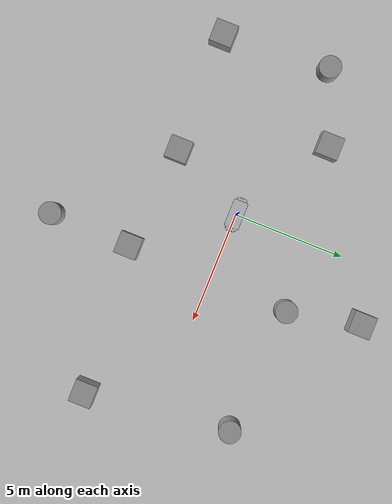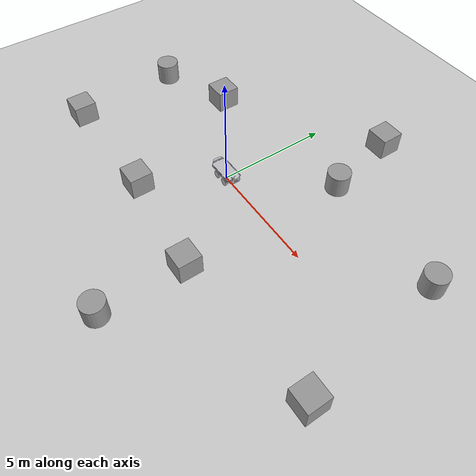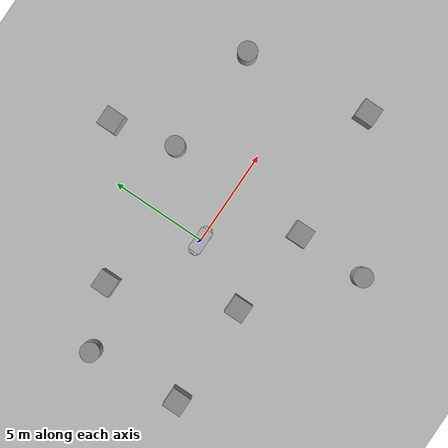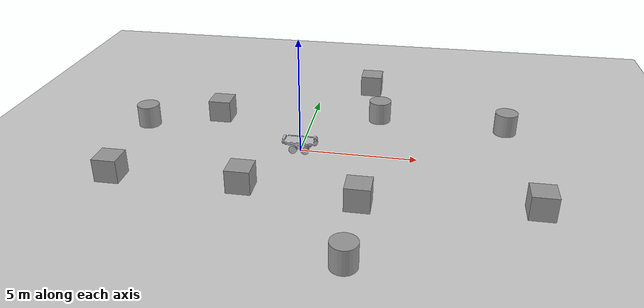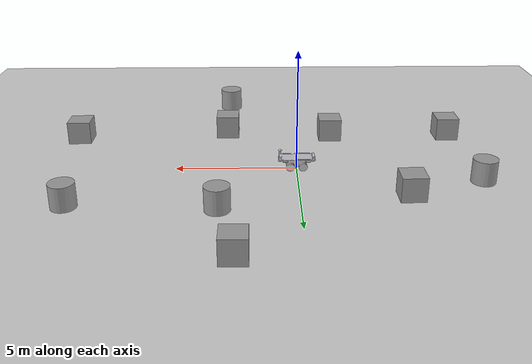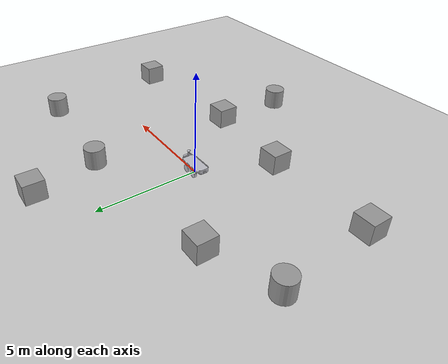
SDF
<sdf version="1.7">
 <world name="default">
  <light name="sun" type="directional">
   <pose>0 0 10 0 -0 0</pose>
   <diffuse>0.8 0.8 0.8 1</diffuse>
   <specular>0.2 0.2 0.2 1</specular>
   <attenuation>
    <range>1000</range>
    <constant>0.9</constant>
    <linear>0.01</linear>
    <quadratic>0.001</quadratic>
   </attenuation>
   <direction>-0.5 0.1 -0.9</direction>
   <spot><inner_angle>0</inner_angle><outer_angle>0</outer_angle><falloff>0</falloff></spot>
  </light>
  <model name="ground_plane">
   <static>1</static>
   <link name="link">
    <collision name="collision">
     <geometry><plane><normal>0 0 1</normal><size>100 100</size></plane></geometry>
     <surface><friction><ode><mu>100</mu><mu2>50</mu2></ode></friction></surface>
    </collision>
    <visual name="visual">
     <cast_shadows>0</cast_shadows>
     <geometry><plane><normal>0 0 1</normal><size>100 100</size></plane></geometry>
     <material>
      <script><uri>file://media/materials/scripts/gazebo.material</uri><name>Gazebo/Grey</name></script>
     </material>
    </visual>
   </link>
  </model>
  <gravity>0 0 -9.8</gravity>
  <magnetic_field>6e-06 2.3e-05 -4.2e-05</magnetic_field>
  <atmosphere type="adiabatic"/>
  <physics type="ode">
   <max_step_size>0.001</max_step_size>
   <real_time_factor>1</real_time_factor>
   <real_time_update_rate>1000</real_time_update_rate>
  </physics>
  <scene><ambient>0.4 0.4 0.4 1</ambient><background>0.7 0.7 0.7 1</background><shadows>1</shadows></scene>
  <audio><device>default</device></audio>
  <spherical_coordinates>
   <surface_model>EARTH_WGS84</surface_model>
   <latitude_deg>0</latitude_deg>
   <longitude_deg>0</longitude_deg>
   <elevation>0</elevation>
   <heading_deg>0</heading_deg>
  </spherical_coordinates>
  <model name="antobot_ant">
   <link name="base_footprint">
    <inertial>
     <pose>-0.007307 -7.8e-05 0.399288 0 -0 0</pose>
     <mass>1242.34</mass>
     <inertia>
      <ixx>46.383</ixx>
      <ixy>0.0666098</ixy>
      <ixz>-0.116876</ixz>
      <iyy>190.814</iyy>
      <iyz>0.023789</iyz>
      <izz>204.796</izz>
     </inertia>
    </inertial>
    <collision name="base_footprint_fixed_joint_lump__base_link_collision">
     <pose>0 0 0.2 0 -0 0</pose>
     <geometry>
      <mesh>
       <scale>0.001 0.001 0.001</scale>
       <uri>file:///home/the-hassan-shahzad/ros2_ws/install/antobot_ant_description/share/antobot_ant_description/meshes/base_link.stl</uri>
      </mesh>
     </geometry>
     <surface><friction><ode><mu>0.2</mu><mu2>0.2</mu2></ode></friction></surface>
    </collision>
    <collision name="base_footprint_fixed_joint_lump__front_camera_1_collision_1">
     <pose>0 0 0.2 0 -0 0</pose>
     <geometry>
      <mesh>
       <scale>0.001 0.001 0.001</scale>
       <uri>file:///home/the-hassan-shahzad/ros2_ws/install/antobot_ant_description/share/antobot_ant_description/meshes/front_camera_1.stl</uri>
      </mesh>
     </geometry>
     <surface><friction><ode><mu>0.2</mu><mu2>0.2</mu2></ode></friction></surface>
    </collision>
    <collision name="base_footprint_fixed_joint_lump__Leishen_C16_Bottom_Connector_1_collision_2">
     <pose>0 0 0.2 0 -0 0</pose>
     <geometry>
      <mesh>
       <scale>0.001 0.001 0.001</scale>
       <uri>file:///home/the-hassan-shahzad/ros2_ws/install/antobot_ant_description/share/antobot_ant_description/meshes/Leishen_C16_Bottom_Connector_1.stl</uri>
      </mesh>
     </geometry>
     <surface><friction><ode><mu>0.2</mu><mu2>0.2</mu2></ode></friction></surface>
    </collision>
    <collision name="base_footprint_fixed_joint_lump__rear_camera_1_collision_3">
     <pose>0 0 0.2 0 -0 0</pose>
     <geometry>
      <mesh>
       <scale>0.001 0.001 0.001</scale>
       <uri>file:///home/the-hassan-shahzad/ros2_ws/install/antobot_ant_description/share/antobot_ant_description/meshes/rear_camera_1.stl</uri>
      </mesh>
     </geometry>
     <surface><friction><ode><mu>0.2</mu><mu2>0.2</mu2></ode></friction></surface>
    </collision>
    <visual name="base_footprint_fixed_joint_lump__base_link_visual">
     <pose>0 0 0.2 0 -0 0</pose>
     <geometry>
      <mesh>
       <scale>0.001 0.001 0.001</scale>
       <uri>file:///home/the-hassan-shahzad/ros2_ws/install/antobot_ant_description/share/antobot_ant_description/meshes/base_link_R.stl</uri>
      </mesh>
     </geometry>
     <material>
      <script><name>Gazebo/Silver</name><uri>file://media/materials/scripts/gazebo.material</uri></script>
     </material>
    </visual>
    <visual name="base_footprint_fixed_joint_lump__front_camera_1_visual_1">
     <pose>0 0 0.2 0 -0 0</pose>
     <geometry>
      <mesh>
       <scale>0.001 0.001 0.001</scale>
       <uri>file:///home/the-hassan-shahzad/ros2_ws/install/antobot_ant_description/share/antobot_ant_description/meshes/front_camera_1.stl</uri>
      </mesh>
     </geometry>
     <material>
      <script><name>Gazebo/Silver</name><uri>file://media/materials/scripts/gazebo.material</uri></script>
     </material>
    </visual>
    <visual name="base_footprint_fixed_joint_lump__Leishen_C16_Bottom_Connector_1_visual_2">
     <pose>0 0 0.2 0 -0 0</pose>
     <geometry>
      <mesh>
       <scale>0.001 0.001 0.001</scale>
       <uri>file:///home/the-hassan-shahzad/ros2_ws/install/antobot_ant_description/share/antobot_ant_description/meshes/Leishen_C16_Bottom_Connector_1.stl</uri>
      </mesh>
     </geometry>
     <material>
      <script><name>Gazebo/Silver</name><uri>file://media/materials/scripts/gazebo.material</uri></script>
     </material>
    </visual>
    <visual name="base_footprint_fixed_joint_lump__rear_camera_1_visual_3">
     <pose>0 0 0.2 0 -0 0</pose>
     <geometry>
      <mesh>
       <scale>0.001 0.001 0.001</scale>
       <uri>file:///home/the-hassan-shahzad/ros2_ws/install/antobot_ant_description/share/antobot_ant_description/meshes/rear_camera_1.stl</uri>
      </mesh>
     </geometry>
     <material>
      <script><name>Gazebo/Silver</name><uri>file://media/materials/scripts/gazebo.material</uri></script>
     </material>
    </visual>
    <gravity>0</gravity>
    <sensor name="front_camera" type="camera">
     <visualize>1</visualize>
     <update_rate>10</update_rate>
     <camera>
      <horizontal_fov>1.089</horizontal_fov>
      <image><format>R8G8B8</format><width>640</width><height>480</height></image>
      <clip><near>0.05</near><far>8</far></clip>
     </camera>
     <plugin name="front_camera_controller" filename="libgazebo_ros_camera.so">
      <frame_name>front_camera_link_optical</frame_name>
     </plugin>
     <pose>0.750549 0 0.513081 0 -0 0</pose>
    </sensor>
    <sensor name="leishen_2d_lidar_sim" type="ray">
     <visualize>0</visualize>
     <update_rate>10</update_rate>
     <ray>
      <scan>
       <horizontal>
        <samples>320</samples>
        <min_angle>-2.82</min_angle>
        <max_angle>2.82</max_angle>
        <resolution>1</resolution>
       </horizontal>
       <vertical><samples>1</samples><min_angle>0</min_angle><max_angle>0</max_angle></vertical>
      </scan>
      <range><min>0.1</min><max>30</max></range>
     </ray>
     <plugin name="leishen_2d_lidar_points" filename="libgazebo_ros_ray_sensor.so">
      <ros><argument>~/out:=scan</argument></ros>
      <output_type>sensor_msgs/LaserScan</output_type>
      <frame_name>laser_frame</frame_name>
     </plugin>
     <pose>0.680776 -0.108 0.650999 0 -0 0</pose>
    </sensor>
    <sensor name="rear_camera" type="camera">
     <visualize>1</visualize>
     <update_rate>10</update_rate>
     <camera>
      <horizontal_fov>1.089</horizontal_fov>
      <image><format>R8G8B8</format><width>640</width><height>480</height></image>
      <clip><near>0.05</near><far>8</far></clip>
     </camera>
     <plugin name="rear_camera_controller" filename="libgazebo_ros_camera.so">
      <frame_name>rear_camera_link_optical</frame_name>
     </plugin>
     <pose>-0.76355 0 0.511894 0 -0 3.14159</pose>
    </sensor>
   </link>
   <joint name="wheelBL_joint" type="revolute">
    <pose relative_to="base_footprint">-0.265 0.21 0.18 0 -0 0</pose>
    <parent>base_footprint</parent>
    <child>wheelBL_1</child>
    <axis>
     <xyz>0 1 0</xyz>
     <limit><lower>-1e+16</lower><upper>1e+16</upper></limit>
     <dynamics><spring_reference>0</spring_reference><spring_stiffness>0</spring_stiffness></dynamics>
    </axis>
   </joint>
   <link name="wheelBL_1">
    <pose relative_to="wheelBL_joint">0 0 0 0 -0 0</pose>
    <inertial>
     <pose>0 0.053512 0 0 -0 0</pose>
     <mass>81.4648</mass>
     <inertia>
      <ixx>0.706366</ixx>
      <ixy>0</ixy>
      <ixz>0</ixz>
      <iyy>1.25721</iyy>
      <iyz>0</iyz>
      <izz>0.706366</izz>
     </inertia>
    </inertial>
    <collision name="wheelBL_1_collision">
     <pose>0.265 -0.21 0.02 0 -0 0</pose>
     <geometry>
      <mesh>
       <scale>0.001 0.001 0.001</scale>
       <uri>file:///home/the-hassan-shahzad/ros2_ws/install/antobot_ant_description/share/antobot_ant_description/meshes/wheelBL_1.stl</uri>
      </mesh>
     </geometry>
     <surface><friction><ode><mu>0.5</mu><mu2>0.5</mu2></ode></friction></surface>
    </collision>
    <visual name="wheelBL_1_visual">
     <pose>0.265 -0.21 0.02 0 -0 0</pose>
     <geometry>
      <mesh>
       <scale>0.001 0.001 0.001</scale>
       <uri>file:///home/the-hassan-shahzad/ros2_ws/install/antobot_ant_description/share/antobot_ant_description/meshes/wheelBL_1R.stl</uri>
      </mesh>
     </geometry>
     <material>
      <script><name>Gazebo/Silver</name><uri>file://media/materials/scripts/gazebo.material</uri></script>
     </material>
    </visual>
   </link>
   <joint name="wheelBR_joint" type="revolute">
    <pose relative_to="base_footprint">-0.265 -0.21 0.18 0 -0 0</pose>
    <parent>base_footprint</parent>
    <child>wheelBR_1</child>
    <axis>
     <xyz>0 1 0</xyz>
     <limit><lower>-1e+16</lower><upper>1e+16</upper></limit>
     <dynamics><spring_reference>0</spring_reference><spring_stiffness>0</spring_stiffness></dynamics>
    </axis>
   </joint>
   <link name="wheelBR_1">
    <pose relative_to="wheelBR_joint">0 0 0 0 -0 0</pose>
    <inertial>
     <pose>0 -0.053512 -0 0 -0 0</pose>
     <mass>81.4648</mass>
     <inertia>
      <ixx>0.706366</ixx>
      <ixy>0</ixy>
      <ixz>0</ixz>
      <iyy>1.25721</iyy>
      <iyz>0</iyz>
      <izz>0.706366</izz>
     </inertia>
    </inertial>
    <collision name="wheelBR_1_collision">
     <pose>0.265 0.21 0.02 0 -0 0</pose>
     <geometry>
      <mesh>
       <scale>0.001 0.001 0.001</scale>
       <uri>file:///home/the-hassan-shahzad/ros2_ws/install/antobot_ant_description/share/antobot_ant_description/meshes/wheelBR_1.stl</uri>
      </mesh>
     </geometry>
     <surface><friction><ode><mu>0.5</mu><mu2>0.5</mu2></ode></friction></surface>
    </collision>
    <visual name="wheelBR_1_visual">
     <pose>0.265 0.21 0.02 0 -0 0</pose>
     <geometry>
      <mesh>
       <scale>0.001 0.001 0.001</scale>
       <uri>file:///home/the-hassan-shahzad/ros2_ws/install/antobot_ant_description/share/antobot_ant_description/meshes/wheelBR_1R.stl</uri>
      </mesh>
     </geometry>
     <material>
      <script><name>Gazebo/Silver</name><uri>file://media/materials/scripts/gazebo.material</uri></script>
     </material>
    </visual>
   </link>
   <joint name="wheelTL_joint" type="revolute">
    <pose relative_to="base_footprint">0.265 0.21 0.18 0 -0 0</pose>
    <parent>base_footprint</parent>
    <child>wheelTL_1</child>
    <axis>
     <xyz>0 1 0</xyz>
     <limit><lower>-1e+16</lower><upper>1e+16</upper></limit>
     <dynamics><spring_reference>0</spring_reference><spring_stiffness>0</spring_stiffness></dynamics>
    </axis>
   </joint>
   <link name="wheelTL_1">
    <pose relative_to="wheelTL_joint">0 0 0 0 -0 0</pose>
    <inertial>
     <pose>0 0.053512 0 0 -0 0</pose>
     <mass>81.4648</mass>
     <inertia>
      <ixx>0.706366</ixx>
      <ixy>0</ixy>
      <ixz>0</ixz>
      <iyy>1.25721</iyy>
      <iyz>0</iyz>
      <izz>0.706366</izz>
     </inertia>
    </inertial>
    <collision name="wheelTL_1_collision">
     <pose>-0.265 -0.21 0.02 0 -0 0</pose>
     <geometry>
      <mesh>
       <scale>0.001 0.001 0.001</scale>
       <uri>file:///home/the-hassan-shahzad/ros2_ws/install/antobot_ant_description/share/antobot_ant_description/meshes/wheelTL_1.stl</uri>
      </mesh>
     </geometry>
     <surface><friction><ode><mu>0.5</mu><mu2>0.5</mu2></ode></friction></surface>
    </collision>
    <visual name="wheelTL_1_visual">
     <pose>-0.265 -0.21 0.02 0 -0 0</pose>
     <geometry>
      <mesh>
       <scale>0.001 0.001 0.001</scale>
       <uri>file:///home/the-hassan-shahzad/ros2_ws/install/antobot_ant_description/share/antobot_ant_description/meshes/wheelTL_1R.stl</uri>
      </mesh>
     </geometry>
     <material>
      <script><name>Gazebo/Silver</name><uri>file://media/materials/scripts/gazebo.material</uri></script>
     </material>
    </visual>
   </link>
   <joint name="wheelTR_joint" type="revolute">
    <pose relative_to="base_footprint">0.265 -0.21 0.18 0 -0 0</pose>
    <parent>base_footprint</parent>
    <child>wheelTR_1</child>
    <axis>
     <xyz>0 1 0</xyz>
     <limit><lower>-1e+16</lower><upper>1e+16</upper></limit>
     <dynamics><spring_reference>0</spring_reference><spring_stiffness>0</spring_stiffness></dynamics>
    </axis>
   </joint>
   <link name="wheelTR_1">
    <pose relative_to="wheelTR_joint">0 0 0 0 -0 0</pose>
    <inertial>
     <pose>0 -0.053512 -0 0 -0 0</pose>
     <mass>81.4648</mass>
     <inertia>
      <ixx>0.706366</ixx>
      <ixy>0</ixy>
      <ixz>0</ixz>
      <iyy>1.25721</iyy>
      <iyz>0</iyz>
      <izz>0.706366</izz>
     </inertia>
    </inertial>
    <collision name="wheelTR_1_collision">
     <pose>-0.265 0.21 0.02 0 -0 0</pose>
     <geometry>
      <mesh>
       <scale>0.001 0.001 0.001</scale>
       <uri>file:///home/the-hassan-shahzad/ros2_ws/install/antobot_ant_description/share/antobot_ant_description/meshes/wheelTR_1.stl</uri>
      </mesh>
     </geometry>
     <surface><friction><ode><mu>0.5</mu><mu2>0.5</mu2></ode></friction></surface>
    </collision>
    <visual name="wheelTR_1_visual">
     <pose>-0.265 0.21 0.02 0 -0 0</pose>
     <geometry>
      <mesh>
       <scale>0.001 0.001 0.001</scale>
       <uri>file:///home/the-hassan-shahzad/ros2_ws/install/antobot_ant_description/share/antobot_ant_description/meshes/wheelTR_1R.stl</uri>
      </mesh>
     </geometry>
     <material>
      <script><name>Gazebo/Silver</name><uri>file://media/materials/scripts/gazebo.material</uri></script>
     </material>
    </visual>
   </link>
   <static>0</static>
   <plugin name="rear_diff_drive" filename="libgazebo_ros_diff_drive.so">
    <left_joint>wheelBL_joint</left_joint>
    <right_joint>wheelBR_joint</right_joint>
    <wheel_separation>0.6</wheel_separation>
    <wheel_diameter>0.305</wheel_diameter>
    <max_wheel_torque>200</max_wheel_torque>
    <max_wheel_acceleration>10.0</max_wheel_acceleration>
    <odometry_frame>odom</odometry_frame>
    <robot_base_frame>base_footprint</robot_base_frame>
    <publish_odom>1</publish_odom>
    <publish_odom_tf>1</publish_odom_tf>
    <publish_wheel_tf>1</publish_wheel_tf>
    <cmd_vel_topic>rear_cmd_vel</cmd_vel_topic>
   </plugin>
   <plugin name="front_diff_drive" filename="libgazebo_ros_diff_drive.so">
    <left_joint>wheelTL_joint</left_joint>
    <right_joint>wheelTR_joint</right_joint>
    <wheel_separation>0.6</wheel_separation>
    <wheel_diameter>0.305</wheel_diameter>
    <max_wheel_torque>200</max_wheel_torque>
    <max_wheel_acceleration>10.0</max_wheel_acceleration>
    <odometry_frame>odom_front</odometry_frame>
    <robot_base_frame>base_footprint</robot_base_frame>
    <publish_odom>0</publish_odom>
    <publish_odom_tf>0</publish_odom_tf>
    <publish_wheel_tf>0</publish_wheel_tf>
    <cmd_vel_topic>rear_cmd_vel</cmd_vel_topic>
   </plugin>
   <pose>-5.5e-05 -8e-06 -0.004315 0 -0 4e-06</pose>
  </model>
  <model name="unit_cylinder">
   <pose>3.10503 3.56721 0.499992 -3e-06 3e-06 0</pose>
   <link name="link">
    <inertial>
     <mass>1</mass>
     <inertia><ixx>0.145833</ixx><ixy>0</ixy><ixz>0</ixz><iyy>0.145833</iyy><iyz>0</iyz><izz>0.125</izz></inertia>
    </inertial>
    <collision name="collision">
     <geometry><cylinder><radius>0.5</radius><length>1</length></cylinder></geometry>
    </collision>
    <visual name="visual">
     <geometry><cylinder><radius>0.5</radius><length>1</length></cylinder></geometry>
     <material>
      <script><name>Gazebo/Grey</name><uri>file://media/materials/scripts/gazebo.material</uri></script>
     </material>
    </visual>
   </link>
  </model>
  <model name="unit_box">
   <pose>2.96622 -3.83285 0.499995 0 1e-05 0</pose>
   <link name="link">
    <inertial>
     <mass>1</mass>
     <inertia>
      <ixx>0.166667</ixx>
      <ixy>0</ixy>
      <ixz>0</ixz>
      <iyy>0.166667</iyy>
      <iyz>0</iyz>
      <izz>0.166667</izz>
     </inertia>
    </inertial>
    <collision name="collision"><geometry><box><size>1 1 1</size></box></geometry></collision>
    <visual name="visual">
     <geometry><box><size>1 1 1</size></box></geometry>
     <material>
      <script><name>Gazebo/Grey</name><uri>file://media/materials/scripts/gazebo.material</uri></script>
     </material>
    </visual>
   </link>
  </model>
  <model name="unit_box_0">
   <pose>-1.68651 -3.35506 0.499995 -1e-05 -0 -0</pose>
   <link name="link">
    <inertial>
     <mass>1</mass>
     <inertia>
      <ixx>0.166667</ixx>
      <ixy>0</ixy>
      <ixz>0</ixz>
      <iyy>0.166667</iyy>
      <iyz>0</iyz>
      <izz>0.166667</izz>
     </inertia>
    </inertial>
    <collision name="collision"><geometry><box><size>1 1 1</size></box></geometry></collision>
    <visual name="visual">
     <geometry><box><size>1 1 1</size></box></geometry>
     <material>
      <script><name>Gazebo/Grey</name><uri>file://media/materials/scripts/gazebo.material</uri></script>
     </material>
    </visual>
   </link>
  </model>
  <model name="unit_box_1">
   <pose>2.40867 6.81458 0.499995 0 1e-05 0</pose>
   <link name="link">
    <inertial>
     <mass>1</mass>
     <inertia>
      <ixx>0.166667</ixx>
      <ixy>0</ixy>
      <ixz>0</ixz>
      <iyy>0.166667</iyy>
      <iyz>0</iyz>
      <izz>0.166667</izz>
     </inertia>
    </inertial>
    <collision name="collision"><geometry><box><size>1 1 1</size></box></geometry></collision>
    <visual name="visual">
     <geometry><box><size>1 1 1</size></box></geometry>
     <material>
      <script><name>Gazebo/Grey</name><uri>file://media/materials/scripts/gazebo.material</uri></script>
     </material>
    </visual>
   </link>
  </model>
  <model name="unit_box_2">
   <pose>-4.24693 2.6469 0.499995 -1e-05 -0 -0</pose>
   <link name="link">
    <inertial>
     <mass>1</mass>
     <inertia>
      <ixx>0.166667</ixx>
      <ixy>0</ixy>
      <ixz>0</ixz>
      <iyy>0.166667</iyy>
      <iyz>0</iyz>
      <izz>0.166667</izz>
     </inertia>
    </inertial>
    <collision name="collision"><geometry><box><size>1 1 1</size></box></geometry></collision>
    <visual name="visual">
     <geometry><box><size>1 1 1</size></box></geometry>
     <material>
      <script><name>Gazebo/Grey</name><uri>file://media/materials/scripts/gazebo.material</uri></script>
     </material>
    </visual>
   </link>
  </model>
  <model name="unit_cylinder_0">
   <pose>8.80724 3.2198 0.499992 -3e-06 -4e-06 -0</pose>
   <link name="link">
    <inertial>
     <mass>1</mass>
     <inertia><ixx>0.145833</ixx><ixy>0</ixy><ixz>0</ixz><iyy>0.145833</iyy><iyz>0</iyz><izz>0.125</izz></inertia>
    </inertial>
    <collision name="collision">
     <geometry><cylinder><radius>0.5</radius><length>1</length></cylinder></geometry>
    </collision>
    <visual name="visual">
     <geometry><cylinder><radius>0.5</radius><length>1</length></cylinder></geometry>
     <material>
      <script><name>Gazebo/Grey</name><uri>file://media/materials/scripts/gazebo.material</uri></script>
     </material>
    </visual>
   </link>
  </model>
  <model name="unit_box_3">
   <pose>9.62377 -3.26248 0.499995 -1e-05 -0 -0</pose>
   <link name="link">
    <inertial>
     <mass>1</mass>
     <inertia>
      <ixx>0.166667</ixx>
      <ixy>0</ixy>
      <ixz>0</ixz>
      <iyy>0.166667</iyy>
      <iyz>0</iyz>
      <izz>0.166667</izz>
     </inertia>
    </inertial>
    <collision name="collision"><geometry><box><size>1 1 1</size></box></geometry></collision>
    <visual name="visual">
     <geometry><box><size>1 1 1</size></box></geometry>
     <material>
      <script><name>Gazebo/Grey</name><uri>file://media/materials/scripts/gazebo.material</uri></script>
     </material>
    </visual>
   </link>
  </model>
  <model name="unit_box_4">
   <pose>-7.04742 -3.40506 0.499995 0 1e-05 0</pose>
   <link name="link">
    <inertial>
     <mass>1</mass>
     <inertia>
      <ixx>0.166667</ixx>
      <ixy>0</ixy>
      <ixz>0</ixz>
      <iyy>0.166667</iyy>
      <iyz>0</iyz>
      <izz>0.166667</izz>
     </inertia>
    </inertial>
    <collision name="collision"><geometry><box><size>1 1 1</size></box></geometry></collision>
    <visual name="visual">
     <geometry><box><size>1 1 1</size></box></geometry>
     <material>
      <script><name>Gazebo/Grey</name><uri>file://media/materials/scripts/gazebo.material</uri></script>
     </material>
    </visual>
   </link>
  </model>
  <model name="unit_cylinder_1">
   <pose>2.926 -7.4729 0.499993 -3e-06 -4e-06 -0</pose>
   <link name="link">
    <inertial>
     <mass>1</mass>
     <inertia><ixx>0.145833</ixx><ixy>0</ixy><ixz>0</ixz><iyy>0.145833</iyy><iyz>0</iyz><izz>0.125</izz></inertia>
    </inertial>
    <collision name="collision">
     <geometry><cylinder><radius>0.5</radius><length>1</length></cylinder></geometry>
    </collision>
    <visual name="visual">
     <geometry><cylinder><radius>0.5</radius><length>1</length></cylinder></geometry>
     <material>
      <script><name>Gazebo/Grey</name><uri>file://media/materials/scripts/gazebo.material</uri></script>
     </material>
    </visual>
   </link>
  </model>
  <model name="unit_cylinder_2">
   <pose>-7.39267 1.3959 0.499997 3e-06 4e-06 -0</pose>
   <link name="link">
    <inertial>
     <mass>1</mass>
     <inertia><ixx>0.145833</ixx><ixy>0</ixy><ixz>0</ixz><iyy>0.145833</iyy><iyz>0</iyz><izz>0.125</izz></inertia>
    </inertial>
    <collision name="collision">
     <geometry><cylinder><radius>0.5</radius><length>1</length></cylinder></geometry>
    </collision>
    <visual name="visual">
     <geometry><cylinder><radius>0.5</radius><length>1</length></cylinder></geometry>
     <material>
      <script><name>Gazebo/Grey</name><uri>file://media/materials/scripts/gazebo.material</uri></script>
     </material>
    </visual>
   </link>
  </model>
 </world>
</sdf>
